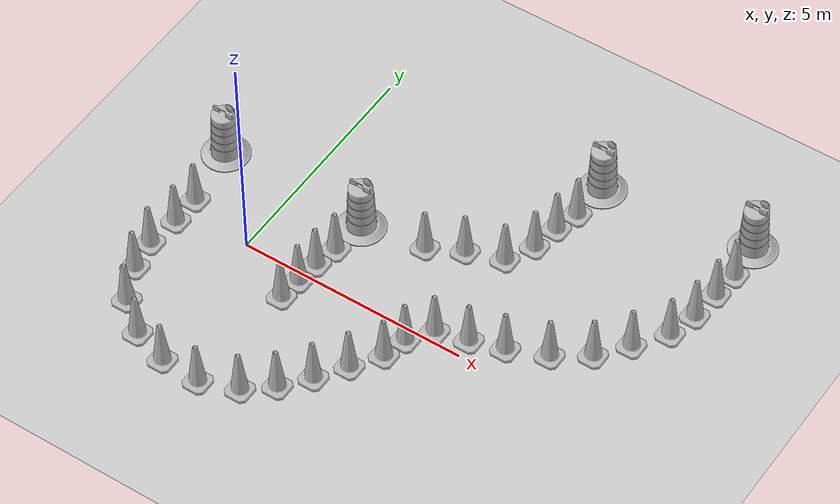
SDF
<sdf version="1.7">
 <world name="default">
  <light name="sun" type="directional">
   <pose>0 0 10 0 -0 0</pose>
   <diffuse>0.8 0.8 0.8 1</diffuse>
   <specular>0.2 0.2 0.2 1</specular>
   <attenuation>
    <range>1000</range>
    <constant>0.9</constant>
    <linear>0.01</linear>
    <quadratic>0.001</quadratic>
   </attenuation>
   <direction>-0.5 0.1 -0.9</direction>
   <spot><inner_angle>0</inner_angle><outer_angle>0</outer_angle><falloff>0</falloff></spot>
  </light>
  <model name="ground_plane">
   <static>1</static>
   <link name="link">
    <collision name="collision">
     <geometry><plane><normal>0 0 1</normal><size>100 100</size></plane></geometry>
     <surface><friction><ode><mu>100</mu><mu2>50</mu2></ode></friction></surface>
    </collision>
    <visual name="visual">
     <cast_shadows>0</cast_shadows>
     <geometry><plane><normal>0 0 1</normal><size>100 100</size></plane></geometry>
     <material>
      <script><uri>file://media/materials/scripts/gazebo.material</uri><name>Gazebo/Grey</name></script>
     </material>
    </visual>
   </link>
  </model>
  <gravity>0 0 -9.8</gravity>
  <magnetic_field>6e-06 2.3e-05 -4.2e-05</magnetic_field>
  <atmosphere type="adiabatic"/>
  <physics type="ode">
   <max_step_size>0.001</max_step_size>
   <real_time_factor>1</real_time_factor>
   <real_time_update_rate>1000</real_time_update_rate>
  </physics>
  <scene><ambient>0.4 0.4 0.4 1</ambient><background>0.7 0.7 0.7 1</background><shadows>1</shadows></scene>
  <audio><device>default</device></audio>
  <spherical_coordinates>
   <surface_model>EARTH_WGS84</surface_model>
   <latitude_deg>0</latitude_deg>
   <longitude_deg>0</longitude_deg>
   <elevation>0</elevation>
   <heading_deg>0</heading_deg>
  </spherical_coordinates>
  <model name="Construction Barrel">
   <link name="link">
    <inertial>
     <pose>0 0 0.4 0 -0 0</pose>
     <mass>500</mass>
     <inertia><ixx>51.2096</ixx><iyy>51.2096</iyy><izz>25</izz><ixy>0</ixy><ixz>0</ixz><iyz>0</iyz></inertia>
    </inertial>
    <collision name="collision">
     <geometry><mesh><uri>model://construction_barrel/meshes/construction_barrel.dae</uri></mesh></geometry>
    </collision>
    <visual name="visual">
     <geometry><mesh><uri>model://construction_barrel/meshes/construction_barrel.dae</uri></mesh></geometry>
    </visual>
   </link>
   <pose>-1.74148 1.71673 -2e-06 -5e-06 -4e-06 -6.5e-05</pose>
  </model>
  <model name="Construction Cone">
   <link name="link">
    <collision name="collision">
     <geometry>
      <mesh><scale>10 10 10</scale><uri>model://construction_cone/meshes/construction_cone.dae</uri></mesh>
     </geometry>
    </collision>
    <visual name="visual">
     <geometry>
      <mesh><scale>10 10 10</scale><uri>model://construction_cone/meshes/construction_cone.dae</uri></mesh>
     </geometry>
    </visual>
    <inertial>
     <inertia><ixx>1</ixx><ixy>0</ixy><ixz>0</ixz><iyy>1</iyy><iyz>0</iyz><izz>1</izz></inertia>
     <mass>1</mass>
    </inertial>
   </link>
   <pose>-1.50858 0.362206 -0 0 -1e-06 0</pose>
  </model>
  <model name="Construction Barrel_0">
   <link name="link">
    <inertial>
     <pose>0 0 0.4 0 -0 0</pose>
     <mass>500</mass>
     <inertia><ixx>51.2096</ixx><iyy>51.2096</iyy><izz>25</izz><ixy>0</ixy><ixz>0</ixz><iyz>0</iyz></inertia>
    </inertial>
    <collision name="collision">
     <geometry><mesh><uri>model://construction_barrel/meshes/construction_barrel.dae</uri></mesh></geometry>
    </collision>
    <visual name="visual">
     <geometry><mesh><uri>model://construction_barrel/meshes/construction_barrel.dae</uri></mesh></geometry>
    </visual>
   </link>
   <pose>1.61162 1.63476 -2e-06 -5e-06 -4e-06 -6.3e-05</pose>
  </model>
  <model name="Construction Cone_0">
   <link name="link">
    <collision name="collision">
     <geometry>
      <mesh><scale>10 10 10</scale><uri>model://construction_cone/meshes/construction_cone.dae</uri></mesh>
     </geometry>
    </collision>
    <visual name="visual">
     <geometry>
      <mesh><scale>10 10 10</scale><uri>model://construction_cone/meshes/construction_cone.dae</uri></mesh>
     </geometry>
    </visual>
    <inertial>
     <inertia><ixx>1</ixx><ixy>0</ixy><ixz>0</ixz><iyy>1</iyy><iyz>0</iyz><izz>1</izz></inertia>
     <mass>1</mass>
    </inertial>
   </link>
   <pose>1.43615 0.328222 -0 0 -1e-06 0</pose>
  </model>
  <model name="Construction Cone_1">
   <link name="link">
    <collision name="collision">
     <geometry>
      <mesh><scale>10 10 10</scale><uri>model://construction_cone/meshes/construction_cone.dae</uri></mesh>
     </geometry>
    </collision>
    <visual name="visual">
     <geometry>
      <mesh><scale>10 10 10</scale><uri>model://construction_cone/meshes/construction_cone.dae</uri></mesh>
     </geometry>
    </visual>
    <inertial>
     <inertia><ixx>1</ixx><ixy>0</ixy><ixz>0</ixz><iyy>1</iyy><iyz>0</iyz><izz>1</izz></inertia>
     <mass>1</mass>
    </inertial>
   </link>
   <pose>-1.58642 -1.01914 -0 0 -0 0</pose>
  </model>
  <model name="Construction Cone_2">
   <link name="link">
    <collision name="collision">
     <geometry>
      <mesh><scale>10 10 10</scale><uri>model://construction_cone/meshes/construction_cone.dae</uri></mesh>
     </geometry>
    </collision>
    <visual name="visual">
     <geometry>
      <mesh><scale>10 10 10</scale><uri>model://construction_cone/meshes/construction_cone.dae</uri></mesh>
     </geometry>
    </visual>
    <inertial>
     <inertia><ixx>1</ixx><ixy>0</ixy><ixz>0</ixz><iyy>1</iyy><iyz>0</iyz><izz>1</izz></inertia>
     <mass>1</mass>
    </inertial>
   </link>
   <pose>1.34504 -0.71691 -0 0 -0 0</pose>
  </model>
  <model name="Construction Cone_3">
   <link name="link">
    <collision name="collision">
     <geometry>
      <mesh><scale>10 10 10</scale><uri>model://construction_cone/meshes/construction_cone.dae</uri></mesh>
     </geometry>
    </collision>
    <visual name="visual">
     <geometry>
      <mesh><scale>10 10 10</scale><uri>model://construction_cone/meshes/construction_cone.dae</uri></mesh>
     </geometry>
    </visual>
    <inertial>
     <inertia><ixx>1</ixx><ixy>0</ixy><ixz>0</ixz><iyy>1</iyy><iyz>0</iyz><izz>1</izz></inertia>
     <mass>1</mass>
    </inertial>
   </link>
   <pose>-1.10311 -2.43295 -0 0 -1e-06 0</pose>
  </model>
  <model name="Construction Cone_4">
   <link name="link">
    <collision name="collision">
     <geometry>
      <mesh><scale>10 10 10</scale><uri>model://construction_cone/meshes/construction_cone.dae</uri></mesh>
     </geometry>
    </collision>
    <visual name="visual">
     <geometry>
      <mesh><scale>10 10 10</scale><uri>model://construction_cone/meshes/construction_cone.dae</uri></mesh>
     </geometry>
    </visual>
    <inertial>
     <inertia><ixx>1</ixx><ixy>0</ixy><ixz>0</ixz><iyy>1</iyy><iyz>0</iyz><izz>1</izz></inertia>
     <mass>1</mass>
    </inertial>
   </link>
   <pose>0.349808 -3.23868 -0 0 -0 0</pose>
  </model>
  <model name="Construction Cone_5">
   <link name="link">
    <collision name="collision">
     <geometry>
      <mesh><scale>10 10 10</scale><uri>model://construction_cone/meshes/construction_cone.dae</uri></mesh>
     </geometry>
    </collision>
    <visual name="visual">
     <geometry>
      <mesh><scale>10 10 10</scale><uri>model://construction_cone/meshes/construction_cone.dae</uri></mesh>
     </geometry>
    </visual>
    <inertial>
     <inertia><ixx>1</ixx><ixy>0</ixy><ixz>0</ixz><iyy>1</iyy><iyz>0</iyz><izz>1</izz></inertia>
     <mass>1</mass>
    </inertial>
   </link>
   <pose>2 -3 -0 0 -0 0</pose>
  </model>
  <model name="Construction Cone_6">
   <link name="link">
    <collision name="collision">
     <geometry>
      <mesh><scale>10 10 10</scale><uri>model://construction_cone/meshes/construction_cone.dae</uri></mesh>
     </geometry>
    </collision>
    <visual name="visual">
     <geometry>
      <mesh><scale>10 10 10</scale><uri>model://construction_cone/meshes/construction_cone.dae</uri></mesh>
     </geometry>
    </visual>
    <inertial>
     <inertia><ixx>1</ixx><ixy>0</ixy><ixz>0</ixz><iyy>1</iyy><iyz>0</iyz><izz>1</izz></inertia>
     <mass>1</mass>
    </inertial>
   </link>
   <pose>3 -2 -0 0 -0 0</pose>
  </model>
  <model name="Construction Cone_7">
   <link name="link">
    <collision name="collision">
     <geometry>
      <mesh><scale>10 10 10</scale><uri>model://construction_cone/meshes/construction_cone.dae</uri></mesh>
     </geometry>
    </collision>
    <visual name="visual">
     <geometry>
      <mesh><scale>10 10 10</scale><uri>model://construction_cone/meshes/construction_cone.dae</uri></mesh>
     </geometry>
    </visual>
    <inertial>
     <inertia><ixx>1</ixx><ixy>0</ixy><ixz>0</ixz><iyy>1</iyy><iyz>0</iyz><izz>1</izz></inertia>
     <mass>1</mass>
    </inertial>
   </link>
   <pose>3.81489 -0.815615 -0 0 -0 0</pose>
  </model>
  <model name="Construction Cone_9">
   <link name="link">
    <collision name="collision">
     <geometry>
      <mesh><scale>10 10 10</scale><uri>model://construction_cone/meshes/construction_cone.dae</uri></mesh>
     </geometry>
    </collision>
    <visual name="visual">
     <geometry>
      <mesh><scale>10 10 10</scale><uri>model://construction_cone/meshes/construction_cone.dae</uri></mesh>
     </geometry>
    </visual>
    <inertial>
     <inertia><ixx>1</ixx><ixy>0</ixy><ixz>0</ixz><iyy>1</iyy><iyz>0</iyz><izz>1</izz></inertia>
     <mass>1</mass>
    </inertial>
   </link>
   <pose>4.29194 0.215008 0 -0 -0 -0.002892</pose>
  </model>
  <model name="Construction Cone_12">
   <link name="link">
    <collision name="collision">
     <geometry>
      <mesh><scale>10 10 10</scale><uri>model://construction_cone/meshes/construction_cone.dae</uri></mesh>
     </geometry>
    </collision>
    <visual name="visual">
     <geometry>
      <mesh><scale>10 10 10</scale><uri>model://construction_cone/meshes/construction_cone.dae</uri></mesh>
     </geometry>
    </visual>
    <inertial>
     <inertia><ixx>1</ixx><ixy>0</ixy><ixz>0</ixz><iyy>1</iyy><iyz>0</iyz><izz>1</izz></inertia>
     <mass>1</mass>
    </inertial>
   </link>
   <pose>2.97197 1.84589 -1e-05 -1e-06 0 0</pose>
  </model>
  <model name="Construction Cone_13">
   <link name="link">
    <collision name="collision">
     <geometry>
      <mesh><scale>10 10 10</scale><uri>model://construction_cone/meshes/construction_cone.dae</uri></mesh>
     </geometry>
    </collision>
    <visual name="visual">
     <geometry>
      <mesh><scale>10 10 10</scale><uri>model://construction_cone/meshes/construction_cone.dae</uri></mesh>
     </geometry>
    </visual>
    <inertial>
     <inertia><ixx>1</ixx><ixy>0</ixy><ixz>0</ixz><iyy>1</iyy><iyz>0</iyz><izz>1</izz></inertia>
     <mass>1</mass>
    </inertial>
   </link>
   <pose>4.44368 2.45442 -0 0 -1e-06 0</pose>
  </model>
  <model name="Construction Cone_15">
   <link name="link">
    <collision name="collision">
     <geometry>
      <mesh><scale>10 10 10</scale><uri>model://construction_cone/meshes/construction_cone.dae</uri></mesh>
     </geometry>
    </collision>
    <visual name="visual">
     <geometry>
      <mesh><scale>10 10 10</scale><uri>model://construction_cone/meshes/construction_cone.dae</uri></mesh>
     </geometry>
    </visual>
    <inertial>
     <inertia><ixx>1</ixx><ixy>0</ixy><ixz>0</ixz><iyy>1</iyy><iyz>0</iyz><izz>1</izz></inertia>
     <mass>1</mass>
    </inertial>
   </link>
   <pose>5.65745 0.599068 -0 0 -0 0</pose>
  </model>
  <model name="Construction Cone_16">
   <link name="link">
    <collision name="collision">
     <geometry>
      <mesh><scale>10 10 10</scale><uri>model://construction_cone/meshes/construction_cone.dae</uri></mesh>
     </geometry>
    </collision>
    <visual name="visual">
     <geometry>
      <mesh><scale>10 10 10</scale><uri>model://construction_cone/meshes/construction_cone.dae</uri></mesh>
     </geometry>
    </visual>
    <inertial>
     <inertia><ixx>1</ixx><ixy>0</ixy><ixz>0</ixz><iyy>1</iyy><iyz>0</iyz><izz>1</izz></inertia>
     <mass>1</mass>
    </inertial>
   </link>
   <pose>7.14122 1.3951 -0 0 -1e-06 0</pose>
  </model>
  <model name="Construction Cone_17">
   <link name="link">
    <collision name="collision">
     <geometry>
      <mesh><scale>10 10 10</scale><uri>model://construction_cone/meshes/construction_cone.dae</uri></mesh>
     </geometry>
    </collision>
    <visual name="visual">
     <geometry>
      <mesh><scale>10 10 10</scale><uri>model://construction_cone/meshes/construction_cone.dae</uri></mesh>
     </geometry>
    </visual>
    <inertial>
     <inertia><ixx>1</ixx><ixy>0</ixy><ixz>0</ixz><iyy>1</iyy><iyz>0</iyz><izz>1</izz></inertia>
     <mass>1</mass>
    </inertial>
   </link>
   <pose>8.09101 2.65771 -0 0 -1e-06 0</pose>
  </model>
  <model name="Construction Cone_19">
   <link name="link">
    <collision name="collision">
     <geometry>
      <mesh><scale>10 10 10</scale><uri>model://construction_cone/meshes/construction_cone.dae</uri></mesh>
     </geometry>
    </collision>
    <visual name="visual">
     <geometry>
      <mesh><scale>10 10 10</scale><uri>model://construction_cone/meshes/construction_cone.dae</uri></mesh>
     </geometry>
    </visual>
    <inertial>
     <inertia><ixx>1</ixx><ixy>0</ixy><ixz>0</ixz><iyy>1</iyy><iyz>0</iyz><izz>1</izz></inertia>
     <mass>1</mass>
    </inertial>
   </link>
   <pose>8.32125 3.97918 -0 0 -0 0</pose>
  </model>
  <model name="Construction Cone_14">
   <link name="link">
    <collision name="collision">
     <geometry>
      <mesh><scale>10 10 10</scale><uri>model://construction_cone/meshes/construction_cone.dae</uri></mesh>
     </geometry>
    </collision>
    <visual name="visual">
     <geometry>
      <mesh><scale>10 10 10</scale><uri>model://construction_cone/meshes/construction_cone.dae</uri></mesh>
     </geometry>
    </visual>
    <inertial>
     <inertia><ixx>1</ixx><ixy>0</ixy><ixz>0</ixz><iyy>1</iyy><iyz>0</iyz><izz>1</izz></inertia>
     <mass>1</mass>
    </inertial>
   </link>
   <pose>4.85446 3.67774 -1e-05 0 -0 0</pose>
  </model>
  <model name="Construction Barrel_1">
   <link name="link">
    <inertial>
     <pose>0 0 0.4 0 -0 0</pose>
     <mass>500</mass>
     <inertia><ixx>51.2096</ixx><iyy>51.2096</iyy><izz>25</izz><ixy>0</ixy><ixz>0</ixz><iyz>0</iyz></inertia>
    </inertial>
    <collision name="collision">
     <geometry><mesh><uri>model://construction_barrel/meshes/construction_barrel.dae</uri></mesh></geometry>
    </collision>
    <visual name="visual">
     <geometry><mesh><uri>model://construction_barrel/meshes/construction_barrel.dae</uri></mesh></geometry>
    </visual>
   </link>
   <pose>5.04544 5.07133 0 0 0 -3.3e-05</pose>
  </model>
  <model name="Construction Barrel_2">
   <link name="link">
    <inertial>
     <pose>0 0 0.4 0 -0 0</pose>
     <mass>500</mass>
     <inertia><ixx>51.2096</ixx><iyy>51.2096</iyy><izz>25</izz><ixy>0</ixy><ixz>0</ixz><iyz>0</iyz></inertia>
    </inertial>
    <collision name="collision">
     <geometry><mesh><uri>model://construction_barrel/meshes/construction_barrel.dae</uri></mesh></geometry>
    </collision>
    <visual name="visual">
     <geometry><mesh><uri>model://construction_barrel/meshes/construction_barrel.dae</uri></mesh></geometry>
    </visual>
   </link>
   <pose>8.31876 5.409 -0 0 0 -3.8e-05</pose>
  </model>
  <model name="Construction Cone_8">
   <link name="link">
    <collision name="collision">
     <geometry>
      <mesh><scale>10 10 10</scale><uri>model://construction_cone/meshes/construction_cone.dae</uri></mesh>
     </geometry>
    </collision>
    <visual name="visual">
     <geometry>
      <mesh><scale>10 10 10</scale><uri>model://construction_cone/meshes/construction_cone.dae</uri></mesh>
     </geometry>
    </visual>
    <inertial>
     <inertia><ixx>1</ixx><ixy>0</ixy><ixz>0</ixz><iyy>1</iyy><iyz>0</iyz><izz>1</izz></inertia>
     <mass>1</mass>
    </inertial>
   </link>
   <pose>-0.439786 -2.97166 -0 0 -0 0</pose>
  </model>
  <model name="Construction Cone_10">
   <link name="link">
    <collision name="collision">
     <geometry>
      <mesh><scale>10 10 10</scale><uri>model://construction_cone/meshes/construction_cone.dae</uri></mesh>
     </geometry>
    </collision>
    <visual name="visual">
     <geometry>
      <mesh><scale>10 10 10</scale><uri>model://construction_cone/meshes/construction_cone.dae</uri></mesh>
     </geometry>
    </visual>
    <inertial>
     <inertia><ixx>1</ixx><ixy>0</ixy><ixz>0</ixz><iyy>1</iyy><iyz>0</iyz><izz>1</izz></inertia>
     <mass>1</mass>
    </inertial>
   </link>
   <pose>1.21753 -3.28194 0 -0 -0 -0</pose>
  </model>
  <model name="Construction Cone_11">
   <link name="link">
    <collision name="collision">
     <geometry>
      <mesh><scale>10 10 10</scale><uri>model://construction_cone/meshes/construction_cone.dae</uri></mesh>
     </geometry>
    </collision>
    <visual name="visual">
     <geometry>
      <mesh><scale>10 10 10</scale><uri>model://construction_cone/meshes/construction_cone.dae</uri></mesh>
     </geometry>
    </visual>
    <inertial>
     <inertia><ixx>1</ixx><ixy>0</ixy><ixz>0</ixz><iyy>1</iyy><iyz>0</iyz><izz>1</izz></inertia>
     <mass>1</mass>
    </inertial>
   </link>
   <pose>2.54701 -2.54691 -0 0 -0 0</pose>
  </model>
  <model name="Construction Cone_18">
   <link name="link">
    <collision name="collision">
     <geometry>
      <mesh><scale>10 10 10</scale><uri>model://construction_cone/meshes/construction_cone.dae</uri></mesh>
     </geometry>
    </collision>
    <visual name="visual">
     <geometry>
      <mesh><scale>10 10 10</scale><uri>model://construction_cone/meshes/construction_cone.dae</uri></mesh>
     </geometry>
    </visual>
    <inertial>
     <inertia><ixx>1</ixx><ixy>0</ixy><ixz>0</ixz><iyy>1</iyy><iyz>0</iyz><izz>1</izz></inertia>
     <mass>1</mass>
    </inertial>
   </link>
   <pose>3.41673 -1.40396 0 -0 -0 -0</pose>
  </model>
  <model name="Construction Cone_20">
   <link name="link">
    <collision name="collision">
     <geometry>
      <mesh><scale>10 10 10</scale><uri>model://construction_cone/meshes/construction_cone.dae</uri></mesh>
     </geometry>
    </collision>
    <visual name="visual">
     <geometry>
      <mesh><scale>10 10 10</scale><uri>model://construction_cone/meshes/construction_cone.dae</uri></mesh>
     </geometry>
    </visual>
    <inertial>
     <inertia><ixx>1</ixx><ixy>0</ixy><ixz>0</ixz><iyy>1</iyy><iyz>0</iyz><izz>1</izz></inertia>
     <mass>1</mass>
    </inertial>
   </link>
   <pose>-1.46811 -1.68302 -8e-06 1e-06 -0 0</pose>
  </model>
  <model name="Construction Cone_21">
   <link name="link">
    <collision name="collision">
     <geometry>
      <mesh><scale>10 10 10</scale><uri>model://construction_cone/meshes/construction_cone.dae</uri></mesh>
     </geometry>
    </collision>
    <visual name="visual">
     <geometry>
      <mesh><scale>10 10 10</scale><uri>model://construction_cone/meshes/construction_cone.dae</uri></mesh>
     </geometry>
    </visual>
    <inertial>
     <inertia><ixx>1</ixx><ixy>0</ixy><ixz>0</ixz><iyy>1</iyy><iyz>0</iyz><izz>1</izz></inertia>
     <mass>1</mass>
    </inertial>
   </link>
   <pose>-1.50445 -0.294541 -0 0 -1e-06 0</pose>
  </model>
  <model name="Construction Cone_22">
   <link name="link">
    <collision name="collision">
     <geometry>
      <mesh><scale>10 10 10</scale><uri>model://construction_cone/meshes/construction_cone.dae</uri></mesh>
     </geometry>
    </collision>
    <visual name="visual">
     <geometry>
      <mesh><scale>10 10 10</scale><uri>model://construction_cone/meshes/construction_cone.dae</uri></mesh>
     </geometry>
    </visual>
    <inertial>
     <inertia><ixx>1</ixx><ixy>0</ixy><ixz>0</ixz><iyy>1</iyy><iyz>0</iyz><izz>1</izz></inertia>
     <mass>1</mass>
    </inertial>
   </link>
   <pose>3.93882 -0.275644 -0 0 -0 0.000485</pose>
  </model>
  <model name="Construction Cone_23">
   <link name="link">
    <collision name="collision">
     <geometry>
      <mesh><scale>10 10 10</scale><uri>model://construction_cone/meshes/construction_cone.dae</uri></mesh>
     </geometry>
    </collision>
    <visual name="visual">
     <geometry>
      <mesh><scale>10 10 10</scale><uri>model://construction_cone/meshes/construction_cone.dae</uri></mesh>
     </geometry>
    </visual>
    <inertial>
     <inertia><ixx>1</ixx><ixy>0</ixy><ixz>0</ixz><iyy>1</iyy><iyz>0</iyz><izz>1</izz></inertia>
     <mass>1</mass>
    </inertial>
   </link>
   <pose>4.96265 0.387667 -0 0 -1e-06 0</pose>
  </model>
  <model name="Construction Cone_24">
   <link name="link">
    <collision name="collision">
     <geometry>
      <mesh><scale>10 10 10</scale><uri>model://construction_cone/meshes/construction_cone.dae</uri></mesh>
     </geometry>
    </collision>
    <visual name="visual">
     <geometry>
      <mesh><scale>10 10 10</scale><uri>model://construction_cone/meshes/construction_cone.dae</uri></mesh>
     </geometry>
    </visual>
    <inertial>
     <inertia><ixx>1</ixx><ixy>0</ixy><ixz>0</ixz><iyy>1</iyy><iyz>0</iyz><izz>1</izz></inertia>
     <mass>1</mass>
    </inertial>
   </link>
   <pose>3.67747 2.19987 -1e-05 -1e-06 0 0</pose>
  </model>
  <model name="Construction Cone_25">
   <link name="link">
    <collision name="collision">
     <geometry>
      <mesh><scale>10 10 10</scale><uri>model://construction_cone/meshes/construction_cone.dae</uri></mesh>
     </geometry>
    </collision>
    <visual name="visual">
     <geometry>
      <mesh><scale>10 10 10</scale><uri>model://construction_cone/meshes/construction_cone.dae</uri></mesh>
     </geometry>
    </visual>
    <inertial>
     <inertia><ixx>1</ixx><ixy>0</ixy><ixz>0</ixz><iyy>1</iyy><iyz>0</iyz><izz>1</izz></inertia>
     <mass>1</mass>
    </inertial>
   </link>
   <pose>6.45449 0.928592 0 -0 -0 -0</pose>
  </model>
  <model name="Construction Cone_26">
   <link name="link">
    <collision name="collision">
     <geometry>
      <mesh><scale>10 10 10</scale><uri>model://construction_cone/meshes/construction_cone.dae</uri></mesh>
     </geometry>
    </collision>
    <visual name="visual">
     <geometry>
      <mesh><scale>10 10 10</scale><uri>model://construction_cone/meshes/construction_cone.dae</uri></mesh>
     </geometry>
    </visual>
    <inertial>
     <inertia><ixx>1</ixx><ixy>0</ixy><ixz>0</ixz><iyy>1</iyy><iyz>0</iyz><izz>1</izz></inertia>
     <mass>1</mass>
    </inertial>
   </link>
   <pose>7.62493 2.00459 -0 0 -0 0</pose>
  </model>
  <model name="Construction Cone_27">
   <link name="link">
    <collision name="collision">
     <geometry>
      <mesh><scale>10 10 10</scale><uri>model://construction_cone/meshes/construction_cone.dae</uri></mesh>
     </geometry>
    </collision>
    <visual name="visual">
     <geometry>
      <mesh><scale>10 10 10</scale><uri>model://construction_cone/meshes/construction_cone.dae</uri></mesh>
     </geometry>
    </visual>
    <inertial>
     <inertia><ixx>1</ixx><ixy>0</ixy><ixz>0</ixz><iyy>1</iyy><iyz>0</iyz><izz>1</izz></inertia>
     <mass>1</mass>
    </inertial>
   </link>
   <pose>4.74587 3.05843 -0 0 -0 0</pose>
  </model>
  <model name="Construction Cone_28">
   <link name="link">
    <collision name="collision">
     <geometry>
      <mesh><scale>10 10 10</scale><uri>model://construction_cone/meshes/construction_cone.dae</uri></mesh>
     </geometry>
    </collision>
    <visual name="visual">
     <geometry>
      <mesh><scale>10 10 10</scale><uri>model://construction_cone/meshes/construction_cone.dae</uri></mesh>
     </geometry>
    </visual>
    <inertial>
     <inertia><ixx>1</ixx><ixy>0</ixy><ixz>0</ixz><iyy>1</iyy><iyz>0</iyz><izz>1</izz></inertia>
     <mass>1</mass>
    </inertial>
   </link>
   <pose>8.255 3.30316 0 -0 -0 -0</pose>
  </model>
  <model name="Construction Cone_29">
   <link name="link">
    <collision name="collision">
     <geometry>
      <mesh><scale>10 10 10</scale><uri>model://construction_cone/meshes/construction_cone.dae</uri></mesh>
     </geometry>
    </collision>
    <visual name="visual">
     <geometry>
      <mesh><scale>10 10 10</scale><uri>model://construction_cone/meshes/construction_cone.dae</uri></mesh>
     </geometry>
    </visual>
    <inertial>
     <inertia><ixx>1</ixx><ixy>0</ixy><ixz>0</ixz><iyy>1</iyy><iyz>0</iyz><izz>1</izz></inertia>
     <mass>1</mass>
    </inertial>
   </link>
   <pose>4.99353 4.2176 0 -0 -0 -0</pose>
  </model>
  <model name="Construction Cone_30">
   <link name="link">
    <collision name="collision">
     <geometry>
      <mesh><scale>10 10 10</scale><uri>model://construction_cone/meshes/construction_cone.dae</uri></mesh>
     </geometry>
    </collision>
    <visual name="visual">
     <geometry>
      <mesh><scale>10 10 10</scale><uri>model://construction_cone/meshes/construction_cone.dae</uri></mesh>
     </geometry>
    </visual>
    <inertial>
     <inertia><ixx>1</ixx><ixy>0</ixy><ixz>0</ixz><iyy>1</iyy><iyz>0</iyz><izz>1</izz></inertia>
     <mass>1</mass>
    </inertial>
   </link>
   <pose>8.36914 4.59521 -0 0 -1e-06 0</pose>
  </model>
  <model name="Construction Cone_31">
   <link name="link">
    <collision name="collision">
     <geometry>
      <mesh><scale>10 10 10</scale><uri>model://construction_cone/meshes/construction_cone.dae</uri></mesh>
     </geometry>
    </collision>
    <visual name="visual">
     <geometry>
      <mesh><scale>10 10 10</scale><uri>model://construction_cone/meshes/construction_cone.dae</uri></mesh>
     </geometry>
    </visual>
    <inertial>
     <inertia><ixx>1</ixx><ixy>0</ixy><ixz>0</ixz><iyy>1</iyy><iyz>0</iyz><izz>1</izz></inertia>
     <mass>1</mass>
    </inertial>
   </link>
   <pose>1.38743 -0.192845 -0 0 -0 0</pose>
  </model>
  <model name="Construction Cone_32">
   <link name="link">
    <collision name="collision">
     <geometry>
      <mesh><scale>10 10 10</scale><uri>model://construction_cone/meshes/construction_cone.dae</uri></mesh>
     </geometry>
    </collision>
    <visual name="visual">
     <geometry>
      <mesh><scale>10 10 10</scale><uri>model://construction_cone/meshes/construction_cone.dae</uri></mesh>
     </geometry>
    </visual>
    <inertial>
     <inertia><ixx>1</ixx><ixy>0</ixy><ixz>0</ixz><iyy>1</iyy><iyz>0</iyz><izz>1</izz></inertia>
     <mass>1</mass>
    </inertial>
   </link>
   <pose>1.5335 0.849439 -0 0 -0 0</pose>
  </model>
 </world>
</sdf>
